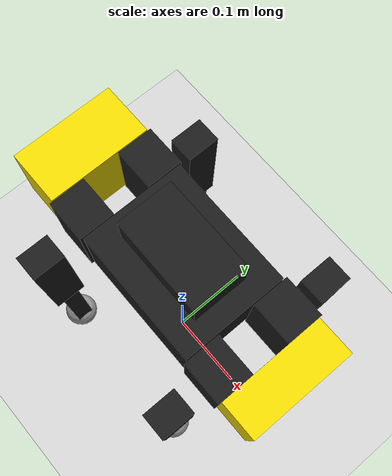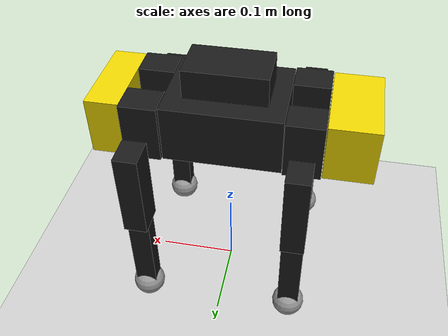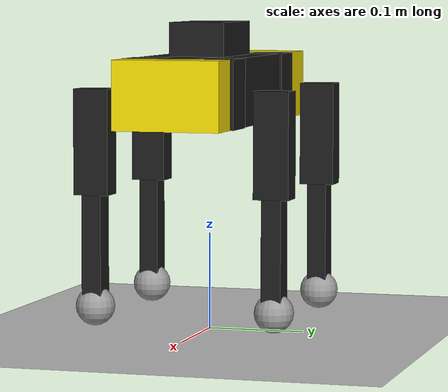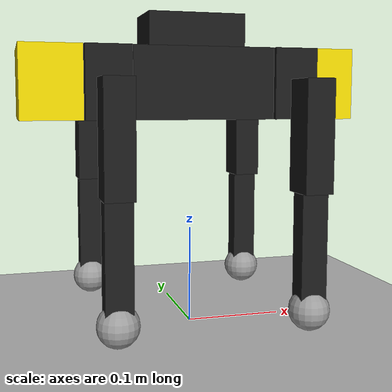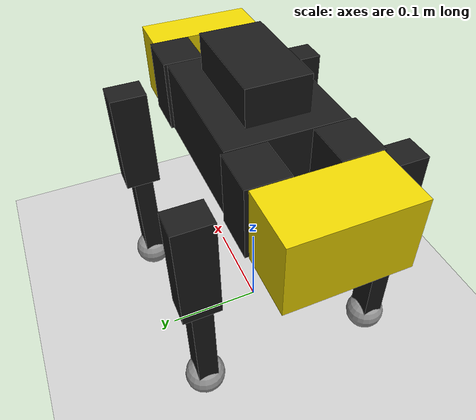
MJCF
<mujoco model="spot_micro_rviz">
  <compiler angle="radian" meshdir="." autolimits="true"/>

  <option timestep="0.002" gravity="0 0 -9.81" integrator="implicitfast">
    <flag warmstart="enable"/>
  </option>

  <asset>
    <texture type="skybox" builtin="gradient" rgb1="0.6 0.8 1.0" rgb2="0.2 0.4 0.8" width="512" height="512"/>
    <texture name="grid" type="2d" builtin="checker" rgb1="0.9 0.9 0.9" rgb2="0.7 0.7 0.7" width="512" height="512"/>
    <material name="grid" texture="grid" texrepeat="10 10" reflectance="0.1"/>
    <material name="yellow" rgba="0.92 0.83 0.0 1"/>
    <material name="black" rgba="0.1 0.1 0.1 1"/>
    <material name="grey" rgba="0.6 0.6 0.6 1"/>
  </asset>

  <worldbody>
    <light pos="0 0 3" dir="0 0 -1" diffuse="0.8 0.8 0.8"/>
    <geom name="floor" size="50 50 0.1" type="plane" material="grid"/>

    <!-- Base link -->
    <body name="base_link" pos="0 0 0.25">
      <freejoint name="root"/>
      <inertial pos="0 0 0" mass="2.80" diaginertia="0.01 0.01 0.01"/>
      <geom size="0.07 0.055 0.035" type="box" rgba="0.1 0.1 0.1 1"/>
      <geom size="0.04925 0.02885 0.035" pos="0 0 0.035" type="box" rgba="0.1 0.1 0.1 1"/>
      <geom size="0.02 0.055 0.035" pos="0.135 0 0" type="box" rgba="0.92 0.83 0 1"/>
      <geom size="0.029 0.055 0.035" pos="-0.145 0 0" type="box" rgba="0.92 0.83 0 1"/>

      <!-- Front Left Leg -->
      <body name="front_left_shoulder_link" pos="0.093 0.039 0">
        <inertial pos="0 0 0" mass="0.1" diaginertia="0.001 0.001 0.001"/>
        <joint name="front_left_shoulder" pos="0 0 0" axis="1 0 0" range="-0.548 0.548" actuatorfrcrange="-1000 1000" frictionloss="0.5" damping="1"/>
        <geom size="0.022 0.019 0.035" type="box" rgba="0.1 0.1 0.1 1"/>
        <body name="front_left_leg_link" pos="0 0.055 0">
          <inertial pos="0 0 0" mass="0.15" diaginertia="0.001 0.001 0.001"/>
          <joint name="front_left_leg" pos="0 0 0" axis="0 1 0" range="-2.666 1.548" actuatorfrcrange="-1000 1000" damping="1"/>
          <geom size="0.014 0.018 0.05375" pos="0 0 -0.05" type="box" rgba="0.1 0.1 0.1 1"/>
          <body name="front_left_foot_link" pos="0 0 -0.1075">
            <inertial pos="0 0 -0.0433333" mass="0.15" diaginertia="0.001 0.001 0.001"/>
            <joint name="front_left_foot" pos="0 0 0" axis="0 1 0" range="-2.6 0.1" actuatorfrcrange="-1000 1000" frictionloss="0.5" damping="1"/>
            <geom size="0.013 0.01 0.065" pos="0 0 -0.05" type="box" rgba="0.1 0.1 0.1 1"/>
            <geom name="front_left_toe" size="0.02" pos="0 0 -0.11" rgba="0.6 0.6 0.6 1"/>
          </body>
        </body>
      </body>

      <!-- Front Right Leg -->
      <body name="front_right_shoulder_link" pos="0.093 -0.039 0">
        <inertial pos="0 0 0" mass="0.1" diaginertia="0.001 0.001 0.001"/>
        <joint name="front_right_shoulder" pos="0 0 0" axis="1 0 0" range="-0.548 0.548" actuatorfrcrange="-1000 1000" frictionloss="0.5" damping="1"/>
        <geom size="0.022 0.019 0.035" type="box" rgba="0.1 0.1 0.1 1"/>
        <body name="front_right_leg_link" pos="0 -0.055 0">
          <inertial pos="0 0 0" mass="0.15" diaginertia="0.001 0.001 0.001"/>
          <joint name="front_right_leg" pos="0 0 0" axis="0 1 0" range="-2.666 1.548" actuatorfrcrange="-1000 1000" damping="1"/>
          <geom size="0.014 0.018 0.05375" pos="0 0 -0.05" type="box" rgba="0.1 0.1 0.1 1"/>
          <body name="front_right_foot_link" pos="0 0 -0.1075">
            <inertial pos="0 0 -0.0433333" mass="0.15" diaginertia="0.001 0.001 0.001"/>
            <joint name="front_right_foot" pos="0 0 0" axis="0 1 0" range="-2.6 0.1" actuatorfrcrange="-1000 1000" frictionloss="0.5" damping="1"/>
            <geom size="0.013 0.01 0.065" pos="0 0 -0.05" type="box" rgba="0.1 0.1 0.1 1"/>
            <geom name="front_right_toe" size="0.02" pos="0 0 -0.11" rgba="0.6 0.6 0.6 1"/>
          </body>
        </body>
      </body>

      <!-- Rear Left Leg -->
      <body name="rear_left_shoulder_link" pos="-0.093 0.039 0">
        <inertial pos="0 0 0" mass="0.1" diaginertia="0.001 0.001 0.001"/>
        <joint name="rear_left_shoulder" pos="0 0 0" axis="1 0 0" range="-0.548 0.548" actuatorfrcrange="-1000 1000" frictionloss="0.5" damping="1"/>
        <geom size="0.022 0.019 0.035" type="box" rgba="0.1 0.1 0.1 1"/>
        <body name="rear_left_leg_link" pos="0 0.055 0">
          <inertial pos="0 0 0" mass="0.15" diaginertia="0.001 0.001 0.001"/>
          <joint name="rear_left_leg" pos="0 0 0" axis="0 1 0" range="-2.666 1.548" actuatorfrcrange="-1000 1000" damping="1"/>
          <geom size="0.014 0.018 0.05375" pos="0 0 -0.05" type="box" rgba="0.1 0.1 0.1 1"/>
          <body name="rear_left_foot_link" pos="0 0 -0.1075">
            <inertial pos="0 0 -0.0433333" mass="0.15" diaginertia="0.001 0.001 0.001"/>
            <joint name="rear_left_foot" pos="0 0 0" axis="0 1 0" range="-2.6 0.1" actuatorfrcrange="-1000 1000" frictionloss="0.5" damping="1"/>
            <geom size="0.013 0.01 0.065" pos="0 0 -0.05" type="box" rgba="0.1 0.1 0.1 1"/>
            <geom name="rear_left_toe" size="0.02" pos="0 0 -0.11" rgba="0.6 0.6 0.6 1"/>
          </body>
        </body>
      </body>

      <!-- Rear Right Leg -->
      <body name="rear_right_shoulder_link" pos="-0.093 -0.039 0">
        <inertial pos="0 0 0" mass="0.1" diaginertia="0.001 0.001 0.001"/>
        <joint name="rear_right_shoulder" pos="0 0 0" axis="1 0 0" range="-0.548 0.548" actuatorfrcrange="-1000 1000" frictionloss="0.5" damping="1"/>
        <geom size="0.022 0.019 0.035" type="box" rgba="0.1 0.1 0.1 1"/>
        <body name="rear_right_leg_link" pos="0 -0.055 0">
          <inertial pos="0 0 0" mass="0.15" diaginertia="0.001 0.001 0.001"/>
          <joint name="rear_right_leg" pos="0 0 0" axis="0 1 0" range="-2.666 1.548" actuatorfrcrange="-1000 1000" damping="1"/>
          <geom size="0.014 0.018 0.05375" pos="0 0 -0.05" type="box" rgba="0.1 0.1 0.1 1"/>
          <body name="rear_right_foot_link" pos="0 0 -0.1075">
            <inertial pos="0 0 -0.0433333" mass="0.15" diaginertia="0.001 0.001 0.001"/>
            <joint name="rear_right_foot" pos="0 0 0" axis="0 1 0" range="-2.6 0.1" actuatorfrcrange="-1000 1000" frictionloss="0.5" damping="1"/>
            <geom size="0.013 0.01 0.065" pos="0 0 -0.05" type="box" rgba="0.1 0.1 0.1 1"/>
            <geom name="rear_right_toe" size="0.02" pos="0 0 -0.11" rgba="0.6 0.6 0.6 1"/>
          </body>
        </body>
      </body>
    </body>
  </worldbody>

  <actuator>
    <position joint="front_left_shoulder" name="front_left_shoulder_actuator" kp="1000" kv="100" ctrlrange="-0.548 0.548"/>
    <position joint="front_left_leg"      name="front_left_leg_actuator"      kp="1000" kv="100" ctrlrange="-2.666 1.548"/>
    <position joint="front_left_foot"     name="front_left_foot_actuator"     kp="1000" kv="100" ctrlrange="-2.6 0.1"/>

    <position joint="front_right_shoulder" name="front_right_shoulder_actuator" kp="1000" kv="100" ctrlrange="-0.548 0.548"/>
    <position joint="front_right_leg"      name="front_right_leg_actuator"      kp="1000" kv="100" ctrlrange="-2.666 1.548"/>
    <position joint="front_right_foot"     name="front_right_foot_actuator"     kp="1000" kv="100" ctrlrange="-2.6 0.1"/>

    <position joint="rear_left_shoulder" name="rear_left_shoulder_actuator" kp="1000" kv="100" ctrlrange="-0.548 0.548"/>
    <position joint="rear_left_leg"      name="rear_left_leg_actuator"      kp="1000" kv="100" ctrlrange="-2.666 1.548"/>
    <position joint="rear_left_foot"     name="rear_left_foot_actuator"     kp="1000" kv="100" ctrlrange="-2.6 0.1"/>

    <position joint="rear_right_shoulder" name="rear_right_shoulder_actuator" kp="1000" kv="100" ctrlrange="-0.548 0.548"/>
    <position joint="rear_right_leg"      name="rear_right_leg_actuator"      kp="1000" kv="100" ctrlrange="-2.666 1.548"/>
    <position joint="rear_right_foot"     name="rear_right_foot_actuator"     kp="1000" kv="100" ctrlrange="-2.6 0.1"/>
  </actuator>
</mujoco>
